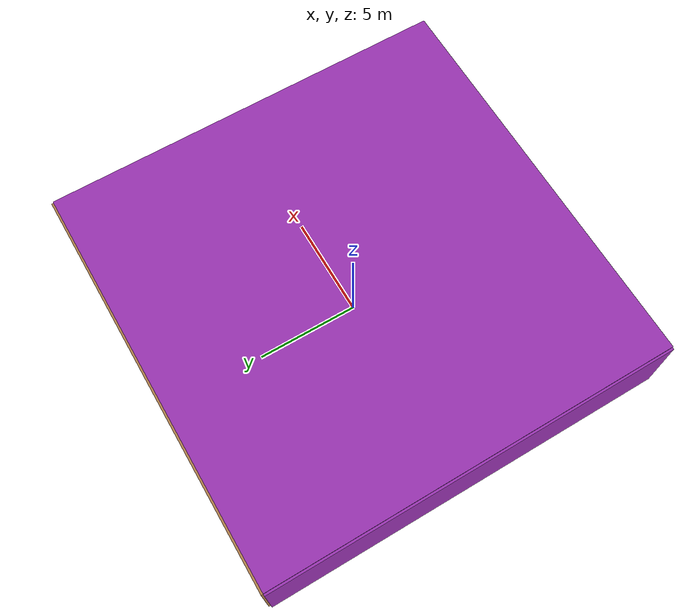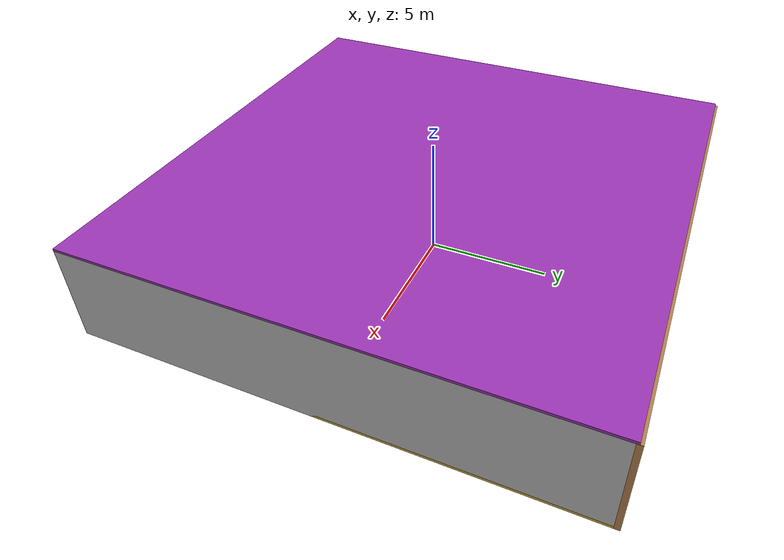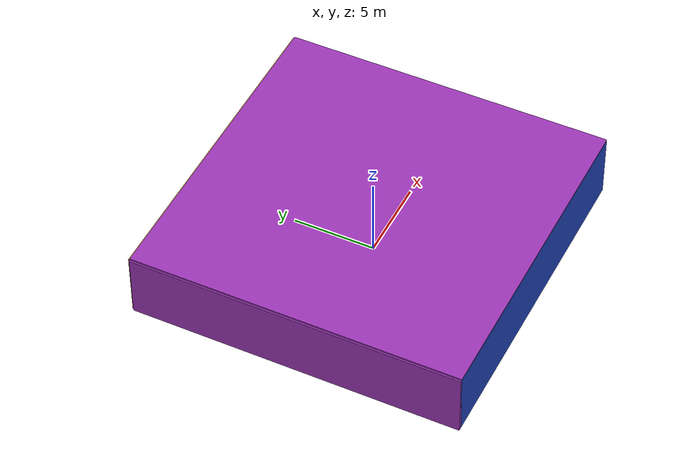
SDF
<sdf version="1.4">
 <world name="default">
  <physics type="ode">
   <max_step_size>0.001</max_step_size>
   <real_time_factor>1</real_time_factor>
   <real_time_update_rate>1000</real_time_update_rate>
   <gravity>0 0 -9.8</gravity>
  </physics>
  <scene><ambient>0.4 0.4 0.4 1</ambient><background>0.7 0.7 0.7 1</background><shadows>1</shadows></scene>
  <model name="Surrounding">
   <static>1</static>
   <link name="Ceiling">
    <collision name="Ceiling_Collision"><geometry><box><size>20 20 0.1</size></box></geometry></collision>
    <visual name="Ceiling_Visual">
     <geometry><box><size>20 20 0.1</size></box></geometry>
     <material>
      <script><uri>file://media/materials/scripts/gazebo.material</uri><name>Gazebo/Purple</name></script>
     </material>
    </visual>
    <pose>0 0 4.05 0 0 0</pose>
   </link>
   <link name="Wall_South">
    <collision name="Wall_South_Collision">
     <geometry><box><size>20 0 4</size></box></geometry>
     <pose>0 0 2 0 -0 0</pose>
    </collision>
    <visual name="Wall_South_Visual">
     <pose>0 0 2 0 -0 0</pose>
     <geometry><box><size>20 0 4</size></box></geometry>
     <material>
      <script><uri>file://media/materials/scripts/gazebo.material</uri><name>Gazebo/BlueGlow</name></script>
     </material>
    </visual>
    <velocity_decay><linear>0</linear><angular>0</angular></velocity_decay>
    <pose>0 -10 0 0 -0 0</pose>
   </link>
   <link name="Wall_East">
    <collision name="Wall_21_Collision">
     <geometry><box><size>20 0 4</size></box></geometry>
     <pose>0 0 2 0 -0 0</pose>
    </collision>
    <visual name="Wall_21_Visual">
     <pose>0 0 2 0 -0 0</pose>
     <geometry><box><size>20 0 4</size></box></geometry>
     <material>
      <script><uri>file://media/materials/scripts/gazebo.material</uri><name>Gazebo/Pioneer2Body</name></script>
     </material>
    </visual>
    <velocity_decay><linear>0</linear><angular>0</angular></velocity_decay>
    <pose>10 0 0 0 -0 1.5708</pose>
   </link>
   <link name="Wall_North">
    <collision name="Wall_22_Collision">
     <geometry><box><size>20 0.2 4</size></box></geometry>
     <pose>0 0 2 0 -0 0</pose>
    </collision>
    <visual name="Wall_22_Visual">
     <pose>0 0 2 0 -0 0</pose>
     <geometry><box><size>20 0.2 4</size></box></geometry>
     <material>
      <script><uri>file://media/materials/scripts/gazebo.material</uri><name>Gazebo/WoodFloor</name></script>
     </material>
    </visual>
    <velocity_decay><linear>0</linear><angular>0</angular></velocity_decay>
    <pose>0 10 0 0 -0 0</pose>
   </link>
   <link name="Wall_West">
    <collision name="Wall_23_Collision">
     <geometry><box><size>20 0.2 4</size></box></geometry>
     <pose>0 0 2 0 -0 0</pose>
    </collision>
    <visual name="Wall_23_Visual">
     <pose>0 0 2 0 -0 0</pose>
     <geometry><box><size>20 0.2 4</size></box></geometry>
     <material>
      <script><uri>file://media/materials/scripts/gazebo.material</uri><name>Gazebo/PurpleGlow</name></script>
     </material>
    </visual>
    <velocity_decay><linear>0</linear><angular>0</angular></velocity_decay>
    <pose>-10 0 0 0 0 -1.5708</pose>
   </link>
   <link name="Ground_link">
    <collision name="collision">
     <pose>0 0 .05 0 -0 0</pose>
     <geometry><box><size>20 20 0.1</size></box></geometry>
    </collision>
    <visual name="visual">
     <pose>0 0 .05 0 -0 0</pose>
     <geometry><box><size>20 20 0.1</size></box></geometry>
     <material>
      <script><uri>file://media/materials/scripts/gazebo.material</uri><name>Gazebo/Gold</name></script>
     </material>
    </visual>
   </link>
   <static>1</static>
  </model>
  <spherical_coordinates>
   <surface_model>EARTH_WGS84</surface_model>
   <latitude_deg>0</latitude_deg>
   <longitude_deg>0</longitude_deg>
   <elevation>0</elevation>
   <heading_deg>0</heading_deg>
  </spherical_coordinates>
  <light name="lightball_0" type="diffuse">
   <diffuse>0.8 0.8 0.8 1</diffuse>
   <specular>0.2 0.2 0.2 1</specular>
   <attenuation>
    <range>100</range>
    <constant>0.7</constant>
    <linear>0.01</linear>
    <quadratic>0.001</quadratic>
   </attenuation>
   <direction>-0.5 0.1 -0.9</direction>
   <pose>-3.01339359258 -3.73629152092 2.21096246536 0 0 0</pose>
  </light>
  <light name="lightball_1" type="diffuse">
   <diffuse>0.8 0.8 0.8 1</diffuse>
   <specular>0.2 0.2 0.2 1</specular>
   <attenuation>
    <range>100</range>
    <constant>0.7</constant>
    <linear>0.01</linear>
    <quadratic>0.001</quadratic>
   </attenuation>
   <direction>-0.5 0.1 -0.9</direction>
   <pose>-3.90840816076 -1.54804920958 0.735972989556 0 0 0</pose>
  </light>
  <light name="lightball_2" type="diffuse">
   <diffuse>0.8 0.8 0.8 1</diffuse>
   <specular>0.2 0.2 0.2 1</specular>
   <attenuation>
    <range>100</range>
    <constant>0.7</constant>
    <linear>0.01</linear>
    <quadratic>0.001</quadratic>
   </attenuation>
   <direction>-0.5 0.1 -0.9</direction>
   <pose>-9.06842862339 -6.65648886322 1.19571978664 0 0 0</pose>
  </light>
  <light name="lightball_3" type="diffuse">
   <diffuse>0.8 0.8 0.8 1</diffuse>
   <specular>0.2 0.2 0.2 1</specular>
   <attenuation>
    <range>100</range>
    <constant>0.7</constant>
    <linear>0.01</linear>
    <quadratic>0.001</quadratic>
   </attenuation>
   <direction>-0.5 0.1 -0.9</direction>
   <pose>5.88351363527 0.37452905189 1.3724306843 0 0 0</pose>
  </light>
  <light name="lightball_4" type="diffuse">
   <diffuse>0.8 0.8 0.8 1</diffuse>
   <specular>0.2 0.2 0.2 1</specular>
   <attenuation>
    <range>100</range>
    <constant>0.7</constant>
    <linear>0.01</linear>
    <quadratic>0.001</quadratic>
   </attenuation>
   <direction>-0.5 0.1 -0.9</direction>
   <pose>-1.71841269231 -3.23034467384 1.35358190276 0 0 0</pose>
  </light>
  <light name="lightball_5" type="diffuse">
   <diffuse>0.8 0.8 0.8 1</diffuse>
   <specular>0.2 0.2 0.2 1</specular>
   <attenuation>
    <range>100</range>
    <constant>0.7</constant>
    <linear>0.01</linear>
    <quadratic>0.001</quadratic>
   </attenuation>
   <direction>-0.5 0.1 -0.9</direction>
   <pose>-1.00080143635 -6.22536333376 2.67312114313 0 0 0</pose>
  </light>
  <light name="lightball_6" type="diffuse">
   <diffuse>0.8 0.8 0.8 1</diffuse>
   <specular>0.2 0.2 0.2 1</specular>
   <attenuation>
    <range>100</range>
    <constant>0.7</constant>
    <linear>0.01</linear>
    <quadratic>0.001</quadratic>
   </attenuation>
   <direction>-0.5 0.1 -0.9</direction>
   <pose>6.20083931195 1.2213854721 3.74572211235 0 0 0</pose>
  </light>
  <light name="lightball_7" type="diffuse">
   <diffuse>0.8 0.8 0.8 1</diffuse>
   <specular>0.2 0.2 0.2 1</specular>
   <attenuation>
    <range>100</range>
    <constant>0.7</constant>
    <linear>0.01</linear>
    <quadratic>0.001</quadratic>
   </attenuation>
   <direction>-0.5 0.1 -0.9</direction>
   <pose>3.97116207943 6.19873759913 3.27562128644 0 0 0</pose>
  </light>
  <light name="lightball_8" type="diffuse">
   <diffuse>0.8 0.8 0.8 1</diffuse>
   <specular>0.2 0.2 0.2 1</specular>
   <attenuation>
    <range>100</range>
    <constant>0.7</constant>
    <linear>0.01</linear>
    <quadratic>0.001</quadratic>
   </attenuation>
   <direction>-0.5 0.1 -0.9</direction>
   <pose>-0.584107291556 -2.30673368942 2.11452014225 0 0 0</pose>
  </light>
  <light name="lightball_9" type="diffuse">
   <diffuse>0.8 0.8 0.8 1</diffuse>
   <specular>0.2 0.2 0.2 1</specular>
   <attenuation>
    <range>100</range>
    <constant>0.7</constant>
    <linear>0.01</linear>
    <quadratic>0.001</quadratic>
   </attenuation>
   <direction>-0.5 0.1 -0.9</direction>
   <pose>4.21413694555 -5.39262316247 2.46759905878 0 0 0</pose>
  </light>
  <light name="lightball_10" type="diffuse">
   <diffuse>0.8 0.8 0.8 1</diffuse>
   <specular>0.2 0.2 0.2 1</specular>
   <attenuation>
    <range>100</range>
    <constant>0.7</constant>
    <linear>0.01</linear>
    <quadratic>0.001</quadratic>
   </attenuation>
   <direction>-0.5 0.1 -0.9</direction>
   <pose>3.98236097167 5.96457266373 3.48978964806 0 0 0</pose>
  </light>
  <light name="lightball_11" type="diffuse">
   <diffuse>0.8 0.8 0.8 1</diffuse>
   <specular>0.2 0.2 0.2 1</specular>
   <attenuation>
    <range>100</range>
    <constant>0.7</constant>
    <linear>0.01</linear>
    <quadratic>0.001</quadratic>
   </attenuation>
   <direction>-0.5 0.1 -0.9</direction>
   <pose>-8.16024096593 3.94498130179 0.922264986685 0 0 0</pose>
  </light>
  <light name="lightball_12" type="diffuse">
   <diffuse>0.8 0.8 0.8 1</diffuse>
   <specular>0.2 0.2 0.2 1</specular>
   <attenuation>
    <range>100</range>
    <constant>0.7</constant>
    <linear>0.01</linear>
    <quadratic>0.001</quadratic>
   </attenuation>
   <direction>-0.5 0.1 -0.9</direction>
   <pose>-3.96895527689 6.33331149384 3.03320864526 0 0 0</pose>
  </light>
  <light name="lightball_13" type="diffuse">
   <diffuse>0.8 0.8 0.8 1</diffuse>
   <specular>0.2 0.2 0.2 1</specular>
   <attenuation>
    <range>100</range>
    <constant>0.7</constant>
    <linear>0.01</linear>
    <quadratic>0.001</quadratic>
   </attenuation>
   <direction>-0.5 0.1 -0.9</direction>
   <pose>2.79437649826 5.31163448711 0.84098824282 0 0 0</pose>
  </light>
  <include>
   <uri>model://robocup_3Dsim_goal</uri>
   <pose>-8.23890127167 -1.51572431845 0 0 0 2.37400171765</pose>
  </include>
  <include><uri>model://cabinet</uri><pose>-7.91870477881 8.29723788684 0 0 0 1.27983474809</pose></include>
  <include><uri>model://cabinet</uri><pose>-3.85402900112 3.7883148574 0 0 0 0.180273975791</pose></include>
  <include>
   <uri>model://robocup_3Dsim_goal</uri>
   <pose>1.90395401462 4.19335937438 0 0 0 2.65674487824</pose>
  </include>
 </world>
</sdf>

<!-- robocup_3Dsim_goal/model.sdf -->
<sdf version="1.5">
  <model name="robocup_3d_goal">
    <static>true</static>
    <link name="left_post">
      <pose>0 1.05 0.45 0 0 0</pose>
      <collision name="collision">
        <geometry>
          <cylinder>
            <radius>0.05</radius>
            <length>0.9</length>
          </cylinder>
        </geometry>
      </collision>
      <visual name="visual">
        <geometry>
          <cylinder>
            <radius>0.05</radius>
            <length>0.9</length>
          </cylinder>
        </geometry>
        <material>
          <script>
            <uri>file://media/materials/scripts/gazebo.material</uri>
            <name>Gazebo/ZincYellow</name>
          </script>
        </material>
      </visual>
    </link>
    <link name="left_support_horiz_lower">
      <pose>0.30 1.05 0.01 0 0 0</pose>
      <collision name="collision">
        <geometry>
          <box>
            <size>0.50 0.02 0.02</size>
          </box>
        </geometry>
      </collision>
      <visual name="visual">
        <geometry>
          <box>
            <size>0.50 0.02 0.02</size>
          </box>
        </geometry>
        <material>
          <script>
            <uri>file://media/materials/scripts/gazebo.material</uri>
            <name>Gazebo/White</name>
          </script>
        </material>
      </visual>
    </link>
    <link name="left_support_horiz_upper">
      <pose>0.30 1.05 0.79 0 0 0</pose>
      <collision name="collision">
        <geometry>
          <box>
            <size>0.50 0.02 0.02</size>
          </box>
        </geometry>
      </collision>
      <visual name="visual">
        <geometry>
          <box>
            <size>0.50 0.02 0.02</size>
          </box>
        </geometry>
        <material>
          <script>
            <uri>file://media/materials/scripts/gazebo.material</uri>
            <name>Gazebo/White</name>
          </script>
        </material>
      </visual>
    </link>
    <link name="left_support_vertical">
      <pose>0.56 1.05 0.4 0 1.5708 0</pose>
      <collision name="collision">
        <geometry>
          <box>
            <size>0.80 0.02 0.02</size>
          </box>
        </geometry>
      </collision>
      <visual name="visual">
        <geometry>
          <box>
            <size>0.80 0.02 0.02</size>
          </box>
        </geometry>
        <material>
          <script>
            <uri>file://media/materials/scripts/gazebo.material</uri>
            <name>Gazebo/White</name>
          </script>
        </material>
      </visual>
    </link>
    <link name="right_support_horiz_lower">
      <pose>0.30 -1.05 0.01 0 0 0</pose>
      <collision name="collision">
        <geometry>
          <box>
            <size>0.50 0.02 0.02</size>
          </box>
        </geometry>
      </collision>
      <visual name="visual">
        <geometry>
          <box>
            <size>0.50 0.02 0.02</size>
          </box>
        </geometry>
        <material>
          <script>
            <uri>file://media/materials/scripts/gazebo.material</uri>
            <name>Gazebo/White</name>
          </script>
        </material>
      </visual>
    </link>
    <link name="right_support_horiz_upper">
      <pose>0.30 -1.05 0.79 0 0 0</pose>
      <collision name="collision">
        <geometry>
          <box>
            <size>0.50 0.02 0.02</size>
          </box>
        </geometry>
      </collision>
      <visual name="visual">
        <geometry>
          <box>
            <size>0.50 0.02 0.02</size>
          </box>
        </geometry>
        <material>
          <script>
            <uri>file://media/materials/scripts/gazebo.material</uri>
            <name>Gazebo/White</name>
          </script>
        </material>
      </visual>
    </link>
    <link name="right_support_vertical">
      <pose>0.56 -1.05 0.4 0 1.5708 0</pose>
      <collision name="collision">
        <geometry>
          <box>
            <size>0.80 0.02 0.02</size>
          </box>
        </geometry>
      </collision>
      <visual name="visual">
        <geometry>
          <box>
            <size>0.80 0.02 0.02</size>
          </box>
        </geometry>
        <material>
          <script>
            <uri>file://media/materials/scripts/gazebo.material</uri>
            <name>Gazebo/White</name>
          </script>
        </material>
      </visual>
    </link>
    <link name="center_support_horiz_lower">
      <pose>0.56 0 0.01 0 1.5708 0</pose>
      <collision name="collision">
        <geometry>
          <box>
            <size>0.02 2.08 0.02</size>
          </box>
        </geometry>
      </collision>
      <visual name="visual">
        <geometry>
          <box>
            <size>0.02 2.08 0.02</size>
          </box>
        </geometry>
        <material>
          <script>
            <uri>file://media/materials/scripts/gazebo.material</uri>
            <name>Gazebo/White</name>
          </script>
        </material>
      </visual>
    </link>
    <link name="center_support_horiz_upper">
      <pose>0.56 0 0.79 0 1.5708 0</pose>
      <collision name="collision">
        <geometry>
          <box>
            <size>0.02 2.08 0.02</size>
          </box>
        </geometry>
      </collision>
      <visual name="visual">
        <geometry>
          <box>
            <size>0.02 2.08 0.02</size>
          </box>
        </geometry>
        <material>
          <script>
            <uri>file://media/materials/scripts/gazebo.material</uri>
            <name>Gazebo/White</name>
          </script>
        </material>
      </visual>
    </link>
    <link name="right_post">
      <pose>0 -1.05 0.45 0 0 0</pose>
      <collision name="collision">
        <geometry>
          <cylinder>
            <radius>0.05</radius>
            <length>0.9</length>
          </cylinder>
        </geometry>
      </collision>
      <visual name="visual">
        <geometry>
          <cylinder>
            <radius>0.05</radius>
            <length>0.9</length>
          </cylinder>
        </geometry>
        <material>
          <script>
            <uri>file://media/materials/scripts/gazebo.material</uri>
            <name>Gazebo/ZincYellow</name>
          </script>
        </material>
      </visual>
    </link>
    <link name="crossbar">
      <pose>0 0 0.85 1.57 1.57 0</pose>
      <collision name="collision">
        <geometry>
          <cylinder>
            <radius>0.05</radius>
            <length>2.0</length>
          </cylinder>
        </geometry>
      </collision>
      <visual name="visual">
        <geometry>
          <cylinder>
            <radius>0.05</radius>
            <length>2.0</length>
          </cylinder>
        </geometry>
        <material>
          <script>
            <uri>file://media/materials/scripts/gazebo.material</uri>
            <name>Gazebo/ZincYellow</name>
          </script>
        </material>
      </visual>
    </link>
    <link name="center_net">
      <pose>0.56 0 0.40 0 0 0</pose>
      <collision name="collision">
        <geometry>
          <box>
            <size>0.01 2.1 0.80</size>
          </box>
        </geometry>
      </collision>
      <visual name="visual">
        <geometry>
          <box>
            <size>0.01 2.1 0.80</size>
          </box>
        </geometry>
        <material>
          <script>
            <uri>model://../model_source/models/robocup09_spl_field/materials/scripts/</uri>
            <uri>model://../model_source/models/robocup09_spl_field/materials/textures/</uri>
            <name>RoboCup/Net</name>
          </script>
        </material>
      </visual>
    </link>
    <link name="left_net">
      <pose>0.30 1.05 0.40 0 0 0</pose>
      <collision name="collision">
        <geometry>
          <box>
            <size>0.50 0.01 0.76</size>
          </box>
        </geometry>
      </collision>
      <visual name="visual">
        <geometry>
          <box>
            <size>0.50 0.01 0.76</size>
          </box>
        </geometry>
        <material>
          <script>
            <uri>model://../model_source/models/robocup09_spl_field/materials/scripts/</uri>
            <uri>model://../model_source/models/robocup09_spl_field/materials/textures/</uri>
            <name>RoboCup/Net</name>
          </script>
        </material>
      </visual>
    </link>
    <link name="right_net">
      <pose>0.30 -1.05 0.40 0 0 0</pose>
      <collision name="collision">
        <geometry>
          <box>
            <size>0.50 0.01 0.76</size>
          </box>
        </geometry>
      </collision>
      <visual name="visual">
        <geometry>
          <box>
            <size>0.50 0.01 0.76</size>
          </box>
        </geometry>
        <material>
          <script>
            <uri>model://../model_source/models/robocup09_spl_field/materials/scripts/</uri>
            <uri>model://../model_source/models/robocup09_spl_field/materials/textures/</uri>
            <name>RoboCup/Net</name>
          </script>
        </material>
      </visual>
    </link>
  </model>
</sdf>

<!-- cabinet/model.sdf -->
<sdf version="1.5">
  <model name="cabinet">
    <static>true</static>
    <link name="cabinet_bottom_plate">
      <inertial>
        <pose>0 0 -1 0 0 0</pose>
        <inertia>
          <ixx>2.050000</ixx>
          <ixy>0</ixy>
          <ixz>0</ixz>
          <iyy>2.050000</iyy>
          <iyz>0</iyz>
          <izz>2.050000</izz>
        </inertia>
        <mass>25.000000</mass>
      </inertial>
      <collision name="cabinet_bottom_plate_geom">
        <pose>0 0 0.010000 0 0 0</pose>
        <geometry>
          <box>
            <size>0.450000 0.450000 0.020000</size>
          </box>
        </geometry>
      </collision>
      <visual name="cabinet_bottom_plate_geom_visual">
        <pose>0 0 0.010000 0 0 0</pose>
        <geometry>
          <box>
            <size>0.450000 0.450000 0.020000</size>
          </box>
        </geometry>
        <material>
          <script>
            <uri>model://media/materials/scripts/gazebo.material</uri>
            <name>Gazebo/Wood</name>
          </script>
        </material>
      </visual>
      <collision name="cabinet_bottom_plate_geom_cabinet_back_plate">
        <pose>0.235000 0 0.510000 0 0 0</pose>
        <geometry>
          <box>
            <size>0.020000 0.450000 1.020000</size>
          </box>
        </geometry>
      </collision>
      <visual name="cabinet_bottom_plate_geom_cabinet_back_plate_visual">
        <pose>0.235000 0 0.510000 0 0 0</pose>
        <geometry>
          <box>
            <size>0.020000 0.450000 1.020000</size>
          </box>
        </geometry>
        <material>
          <script>
            <uri>model://media/materials/scripts/gazebo.material</uri>
            <name>Gazebo/Wood</name>
          </script>
        </material>
      </visual>
      <collision name="cabinet_bottom_plate_geom_cabinet_left_plate">
        <pose>0 0.235000 0.510000 0 0 0</pose>
        <geometry>
          <box>
            <size>0.450000 0.020000 1.020000</size>
          </box>
        </geometry>
      </collision>
      <visual name="cabinet_bottom_plate_geom_cabinet_left_plate_visual">
        <pose>0 0.235000 0.510000 0 0 0</pose>
        <geometry>
          <box>
            <size>0.450000 0.020000 1.020000</size>
          </box>
        </geometry>
        <material>
          <script>
            <uri>model://media/materials/scripts/gazebo.material</uri>
            <name>Gazebo/Wood</name>
          </script>
        </material>
      </visual>
      <collision name="cabinet_bottom_plate_geom_cabinet_middle_plate">
        <pose>0 0 0.510000 0 0 0</pose>
        <geometry>
          <box>
            <size>0.450000 0.450000 0.020000</size>
          </box>
        </geometry>
      </collision>
      <visual name="cabinet_bottom_plate_geom_cabinet_middle_plate_visual">
        <pose>0 0 0.510000 0 0 0</pose>
        <geometry>
          <box>
            <size>0.450000 0.450000 0.020000</size>
          </box>
        </geometry>
        <material>
          <script>
            <uri>model://media/materials/scripts/gazebo.material</uri>
            <name>Gazebo/Wood</name>
          </script>
        </material>
      </visual>
      <collision name="cabinet_bottom_plate_geom_cabinet_right_plate">
        <pose>0 -0.235000 0.510000 0 0 0</pose>
        <geometry>
          <box>
            <size>0.450000 0.020000 1.020000</size>
          </box>
        </geometry>
      </collision>
      <visual name="cabinet_bottom_plate_geom_cabinet_right_plate_visual">
        <pose>0 -0.235000 0.510000 0 0 0</pose>
        <geometry>
          <box>
            <size>0.450000 0.020000 1.020000</size>
          </box>
        </geometry>
        <material>
          <script>
            <uri>model://media/materials/scripts/gazebo.material</uri>
            <name>Gazebo/Wood</name>
          </script>
        </material>
      </visual>
      <collision name="cabinet_bottom_plate_geom_cabinet_top_plate">
        <pose>0 0 1.010000 0 0 0</pose>
        <geometry>
          <box>
            <size>0.450000 0.450000 0.020000</size>
          </box>
        </geometry>
      </collision>
      <visual name="cabinet_bottom_plate_geom_cabinet_top_plate_visual">
        <pose>0 0 1.010000 0 0 0</pose>
        <geometry>
          <box>
            <size>0.450000 0.450000 0.020000</size>
          </box>
        </geometry>
        <material>
          <script>
            <uri>model://media/materials/scripts/gazebo.material</uri>
            <name>Gazebo/Wood</name>
          </script>
        </material>
      </visual>
    </link>
  </model>
</sdf>
